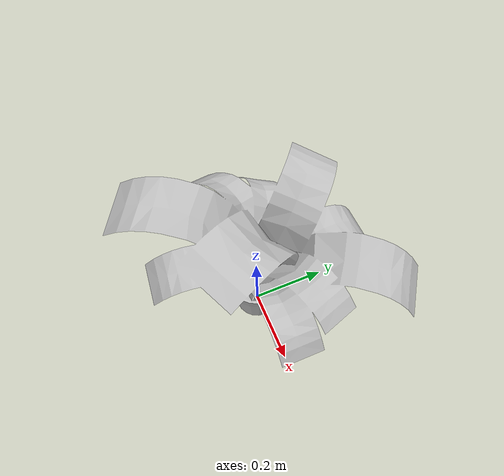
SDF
<?xml version="1.0" ?>
<sdf version="1.5">
  <model name="plant_indoor">
    <link name="link">
      <pose>0 0 0 0 0 0</pose>
      <collision name="collision">
        <geometry>
          <mesh>
            <uri>model://plant_indoor/meshes/model.dae</uri>
          </mesh>
        </geometry>
      </collision>
      <visual name="visual">
        <geometry>
          <mesh>
            <uri>model://plant_indoor/meshes/model.dae</uri>
          </mesh>
        </geometry>
      </visual>
    </link>
    <static>1</static>
  </model>
</sdf>
